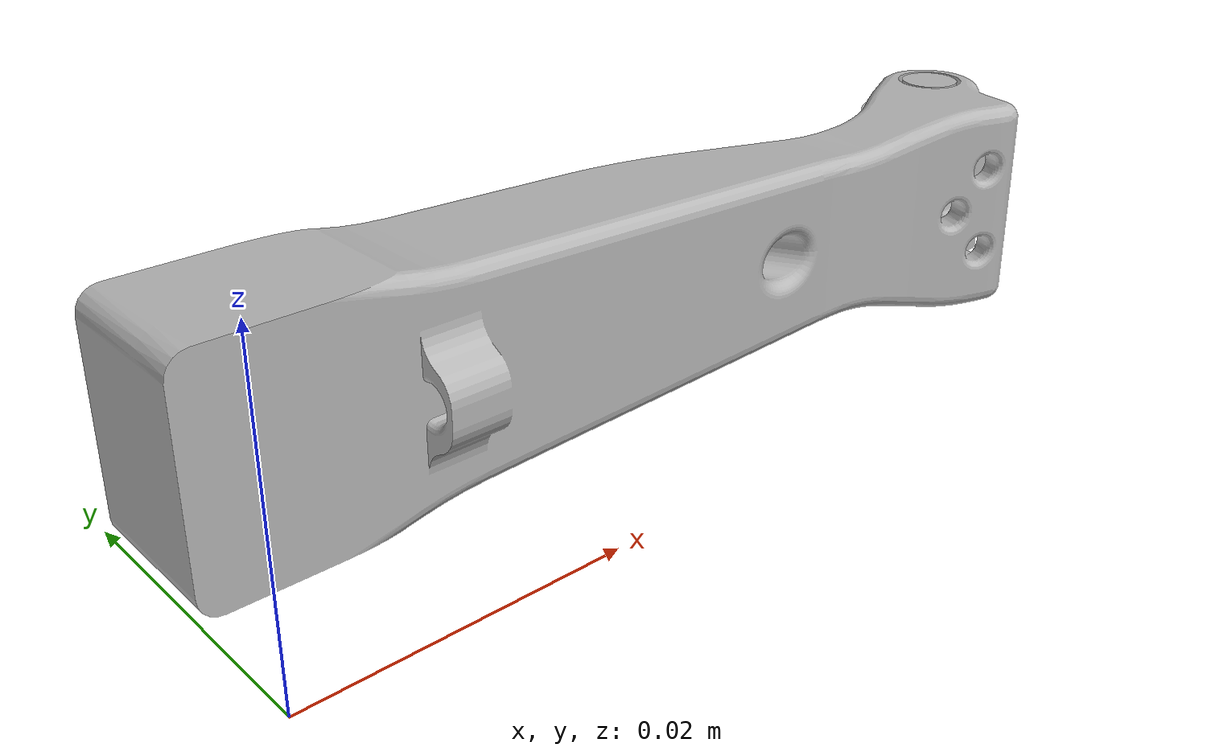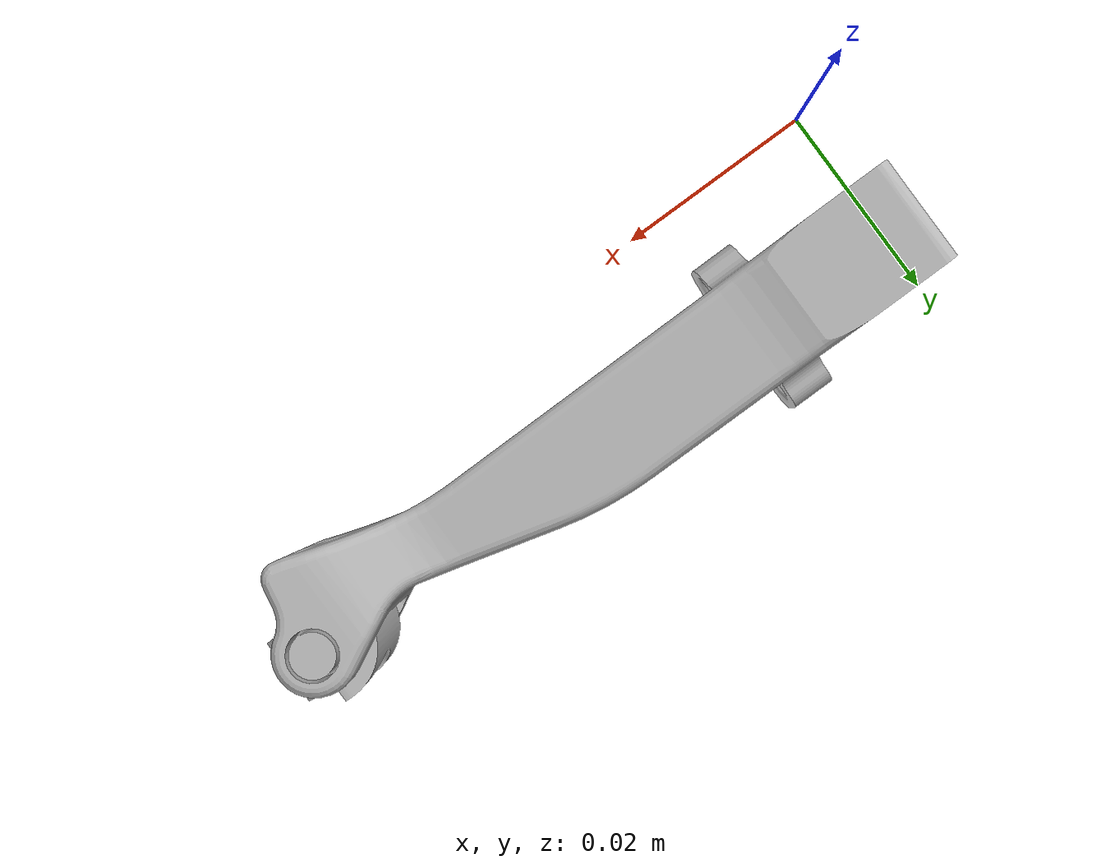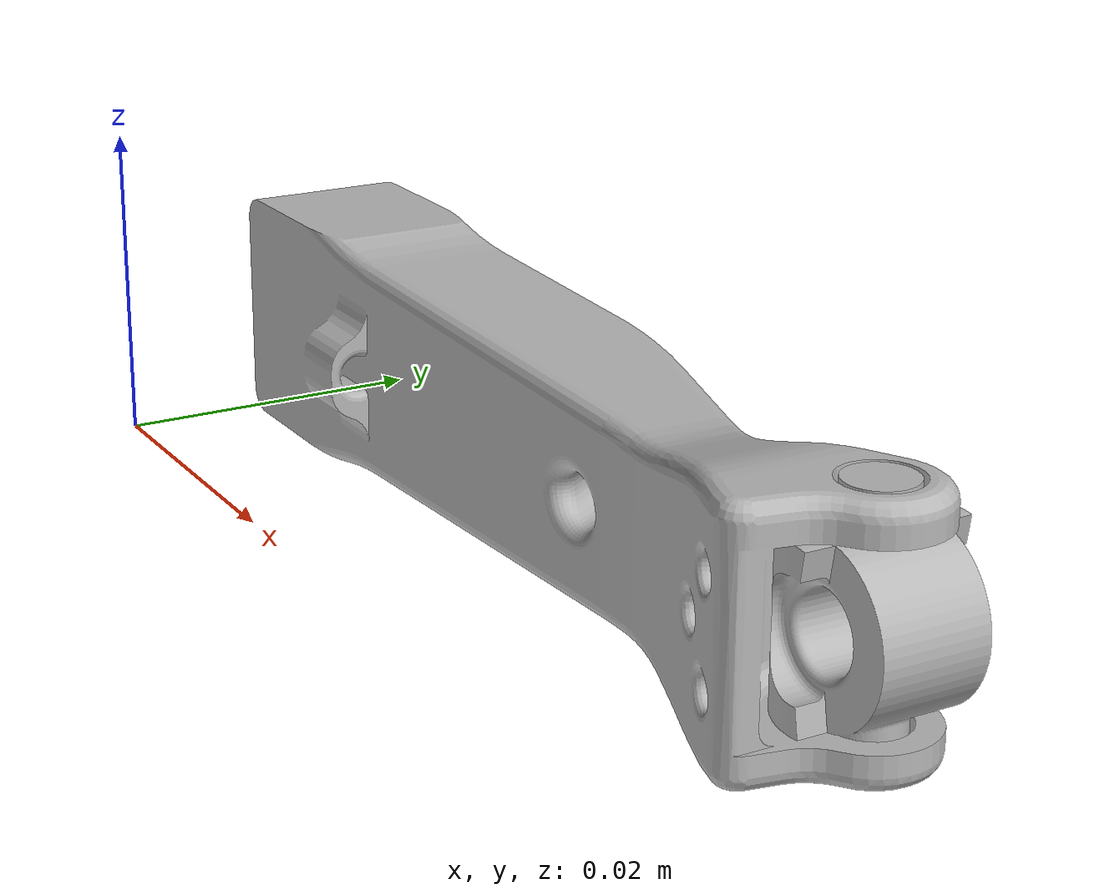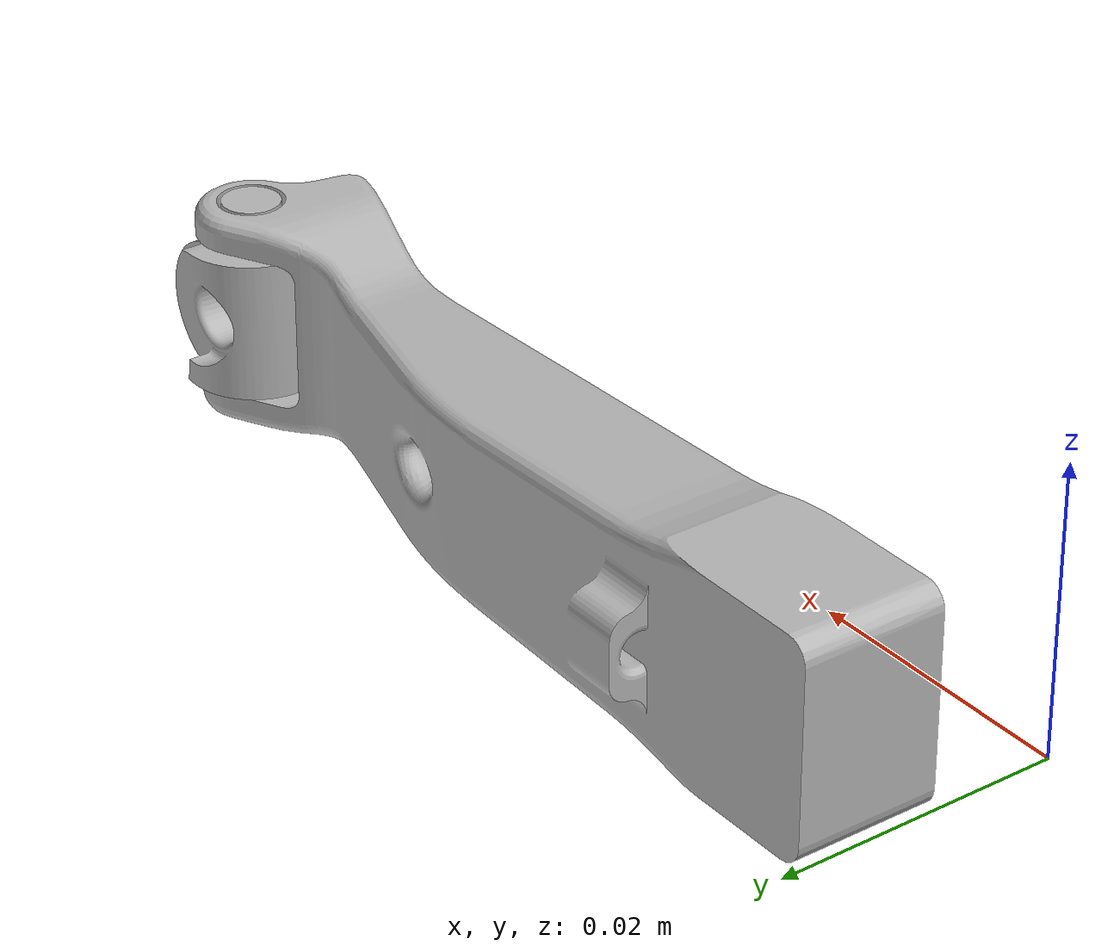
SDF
<?xml version="1.0" ?>
<sdf version="1.6">
	<model name="FingerTest">
		<link name="limb0">
			<pose frame="">0.027293245777073462 0.013288357730036855 0.00749891328987077 0.0 -0.0 0.0</pose>
			<inertial>
				<pose frame="">0.0 0.0 0.0 0 0 0</pose>
				<mass>0.11612310621211899</mass>
				<inertia>
					<ixx>2.998313599222042e-05</ixx>
					<ixy>-4.0248122624355e-05</ixy>
					<ixz>-1.1572151887596866e-05</ixz>
					<iyy>0.00013101299668574168</iyy>
					<iyz>-2.3767786784760614e-05</iyz>
					<izz>0.00014415711073869302</izz>
				</inertia>
			</inertial>
			<collision name="limb0_collision">
				<geometry>
					<mesh>
						<uri>model://FingerTest/meshes/CAD/limb0.stl</uri>
						<scale>0.001 0.001 0.001</scale>
					</mesh>
				</geometry>
			</collision>
			<visual name="limb0_visual">
				<geometry>
					<mesh>
						<uri>model://FingerTest/meshes/CAD/limb0.stl</uri>
						<scale>0.001 0.001 0.001</scale>
					</mesh>
				</geometry>
			</visual>
		</link>
		<link name="limb1">
			<pose frame="">0.020779577795086244 0.004617875760238584 0.005799776645721404 0.0 -0.0 0.0</pose>
			<inertial>
				<pose frame="">0.0 0.0 0.0 0 0 0</pose>
				<mass>0.008412542184097102</mass>
				<inertia>
					<ixx>2.240398566798236e-06</ixx>
					<ixy>-7.355446572419334e-06</ixy>
					<ixz>-8.857102693719348e-07</ixz>
					<iyy>3.4155603968403834e-05</iyy>
					<iyz>-4.035031528647247e-06</iyz>
					<izz>3.521177572801908e-05</izz>
				</inertia>
			</inertial>
			<collision name="limb1_collision">
				<geometry>
					<mesh>
						<uri>model://FingerTest/meshes/CAD/limb1.stl</uri>
						<scale>0.001 0.001 0.001</scale>
					</mesh>
				</geometry>
			</collision>
			<visual name="limb1_visual">
				<geometry>
					<mesh>
						<uri>model://FingerTest/meshes/CAD/limb1.stl</uri>
						<scale>0.001 0.001 0.001</scale>
					</mesh>
				</geometry>
			</visual>
		</link>
		<joint name="joint0" type="revolute">
			<parent>limb0</parent>
			<child>limb1</child>
			<pose frame="">0.04272042220491381 0.009235755172299045 0.009200223354278635 0 0 0</pose>
			<axis>
				<xyz>0.0 0.0 1.0</xyz>
				<limit>
					<lower>-0.0</lower>
					<upper>-0.0</upper>
				</limit>
				<use_parent_model_frame>0</use_parent_model_frame>
			</axis>
		</joint>
		<plugin filename="libmyomuscle_plugin.so" name="myomuscle_plugin"/>
	</model>
</sdf>
